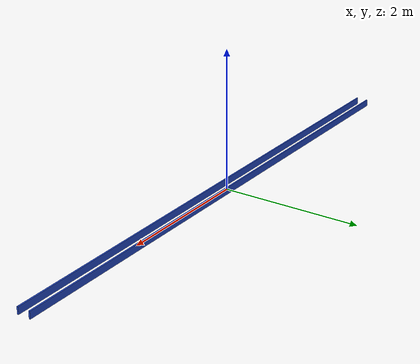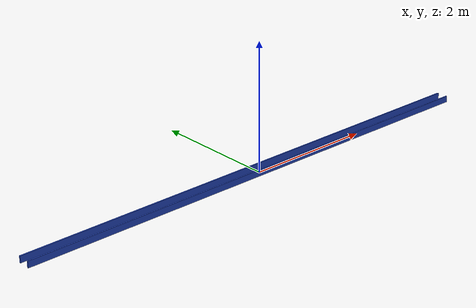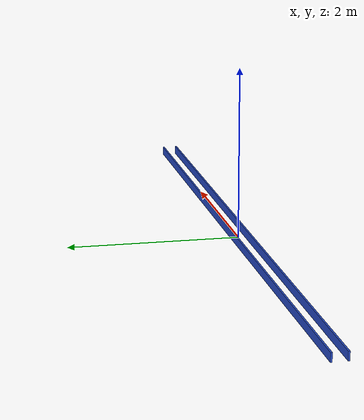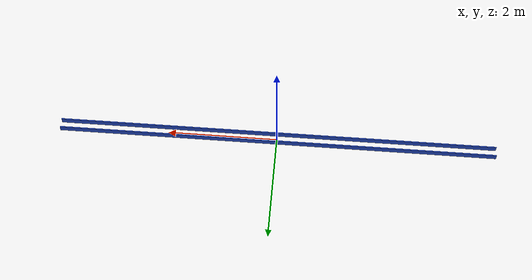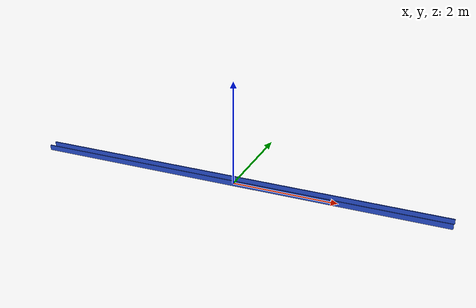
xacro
<?xml version="1.0"?>
<robot name="cartpole" xmlns:xacro="http://www.ros.org/wiki/xacro">
<link name="world"/>

  <joint name="fixed" type="fixed">
    <parent link="world"/>
    <child link="wall"/>
  </joint>

	<link name="wall">
    <!-- pose and inertial -->
	    <inertial>
	      <mass value="5"/>
	      <origin rpy="0 0 0" xyz="0 0 0"/>
	      <inertia ixx="0.013541666667" ixy="0" ixz="0" iyy="0.013541666667" iyz="0" izz="0.01875"/>
	    </inertial>

	    <collision name="collision_chassis">
	    	<origin rpy="0 0 0" xyz="0 0.087 0.05"/>
	      <geometry>
	        <box size="8 0.02 0.10"/>
	      </geometry>
	    </collision>

	    <visual>
	      <origin rpy="0 0 0" xyz="0 0.087 0.05"/>
	      <geometry>
	        <box size="8 0.02 0.10"/>
	      </geometry>
	      <material name="blue"/>
	    </visual>
    </link>

  <joint name="fixed2" type="fixed">
    <parent link="world"/>
    <child link="wall2"/>
  </joint>

    <link name="wall2">
    <!-- pose and inertial -->

	    <inertial>
	      <mass value="5"/>
	      <origin rpy="0 0 0" xyz="0 0 0"/>
	      <inertia ixx="0.013541666667" ixy="0" ixz="0" iyy="0.013541666667" iyz="0" izz="0.01875"/>
	    </inertial>

	    <collision name="collision_chassis">
	    	<origin rpy="0 0 0" xyz="0 -0.087 0.05"/>
	      <geometry>
	        <box size="8 0.02 0.10"/>
	      </geometry>
	    </collision>

	    <visual>
	      <origin rpy="0 0 0" xyz="0 -0.087 0.05"/>
	      <geometry>
	        <box size="8 0.02 0.10"/>
	      </geometry>
	      <material name="blue"/>
	    </visual>

    </link>

</robot>
